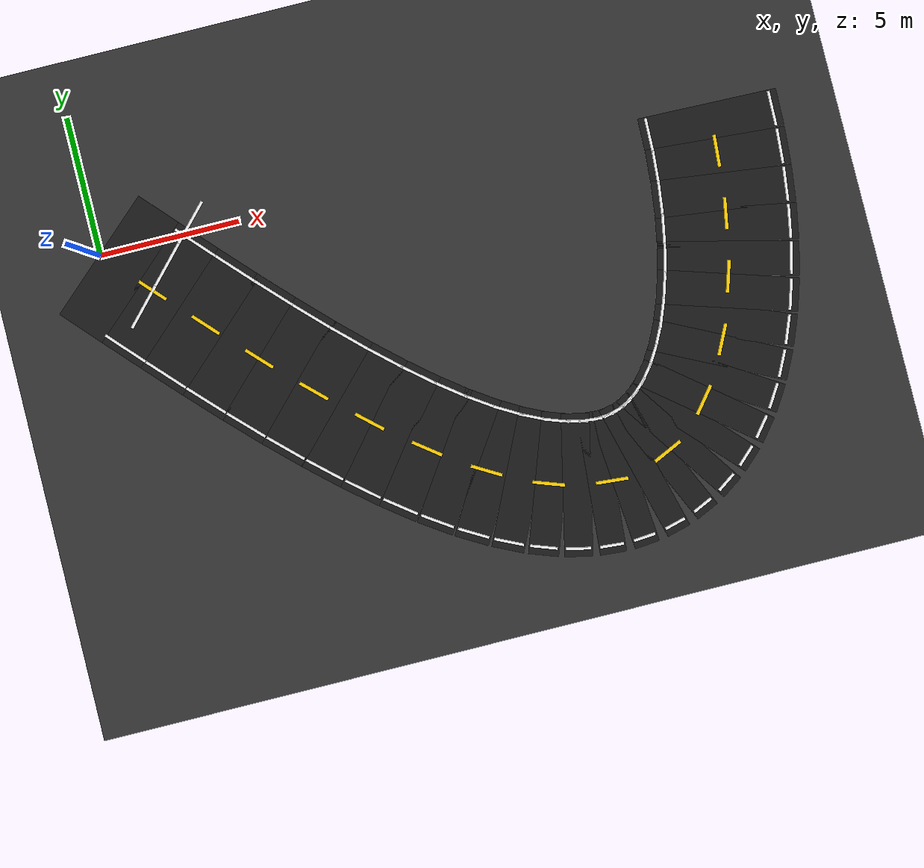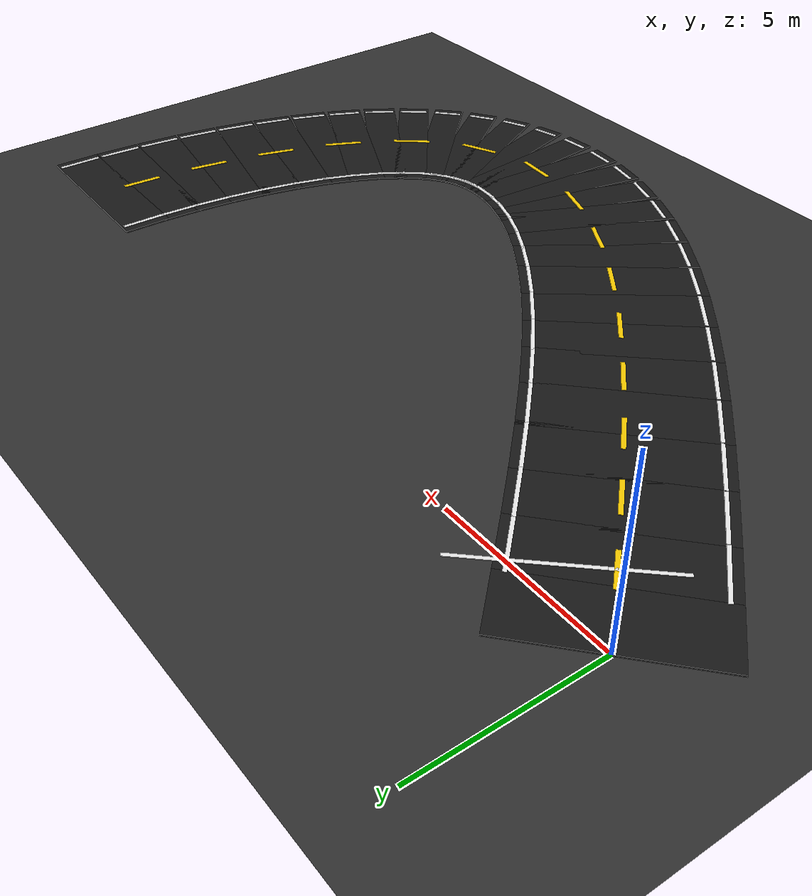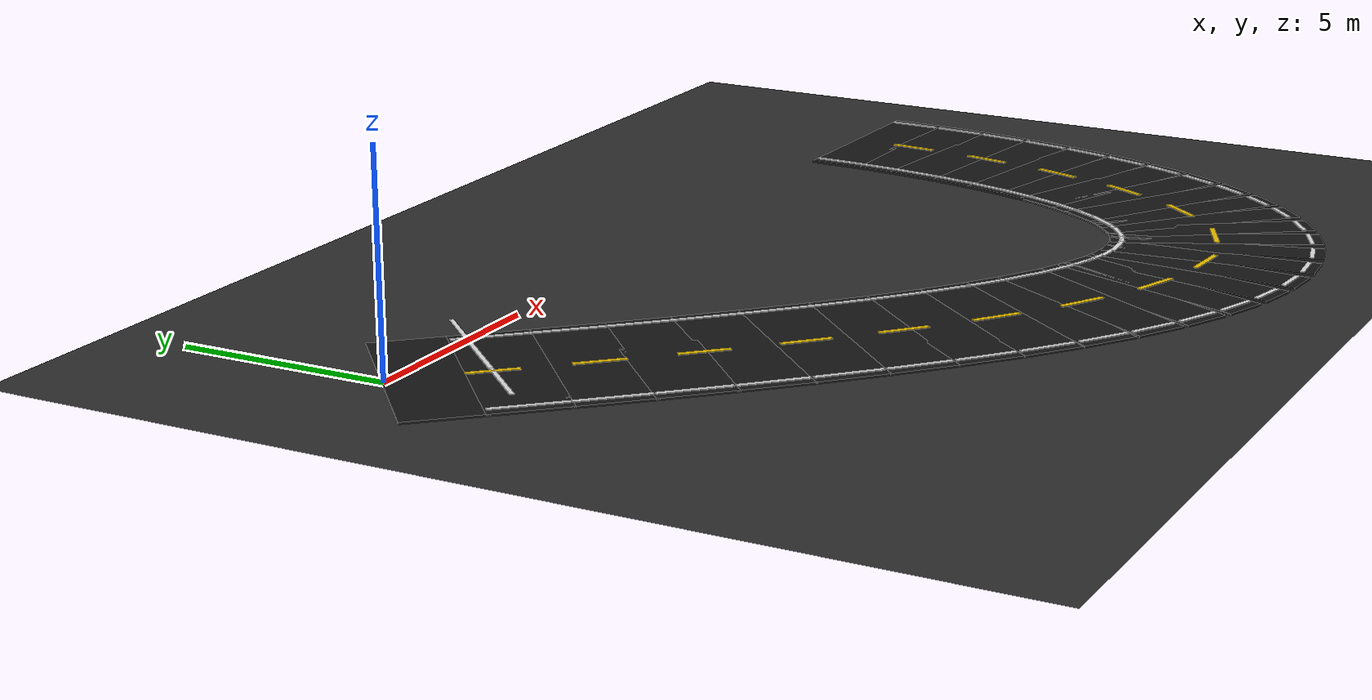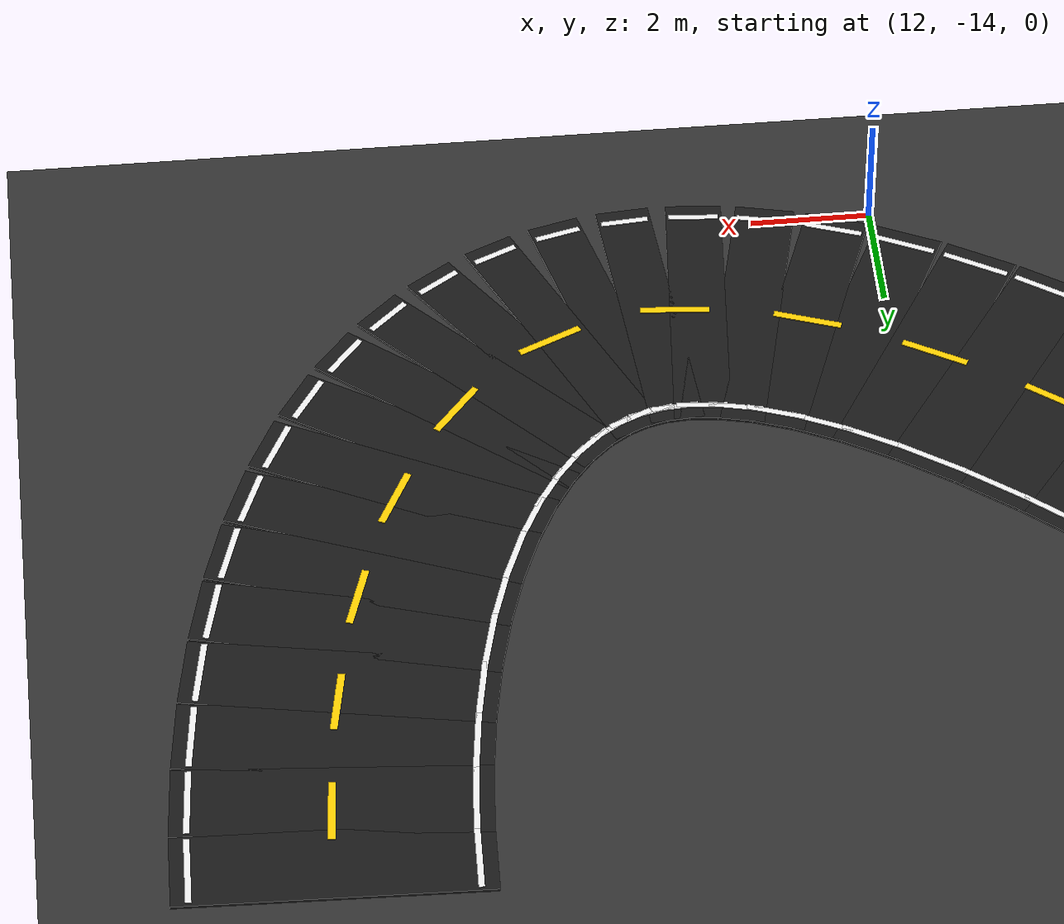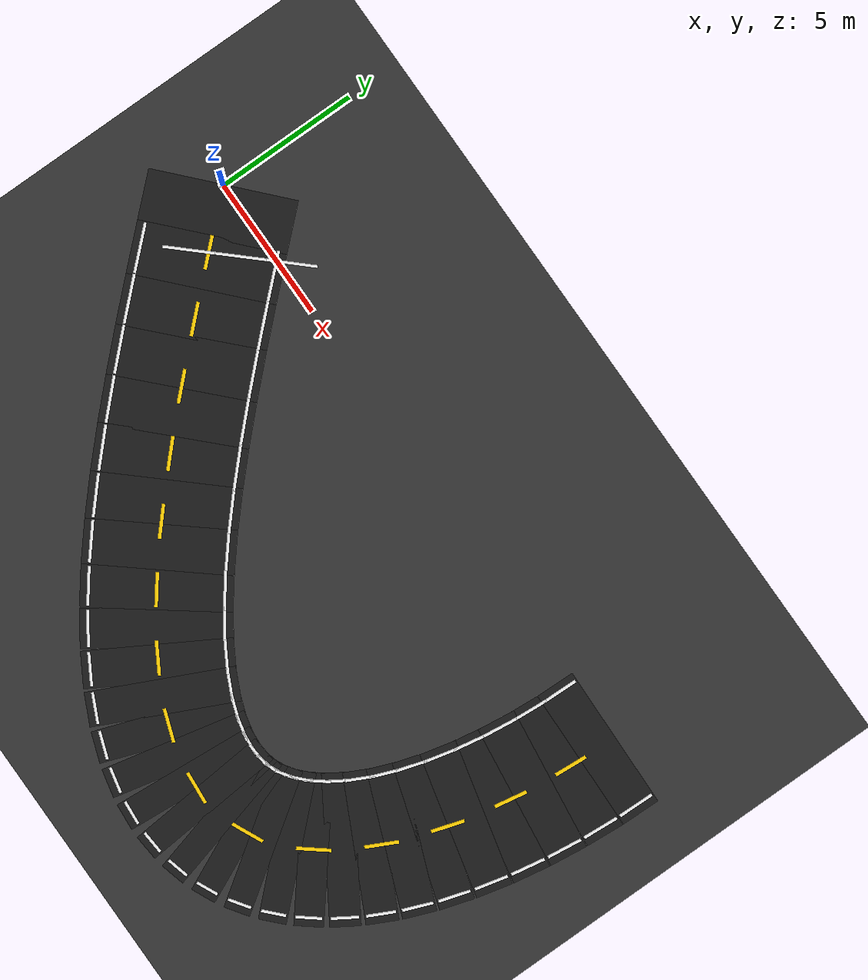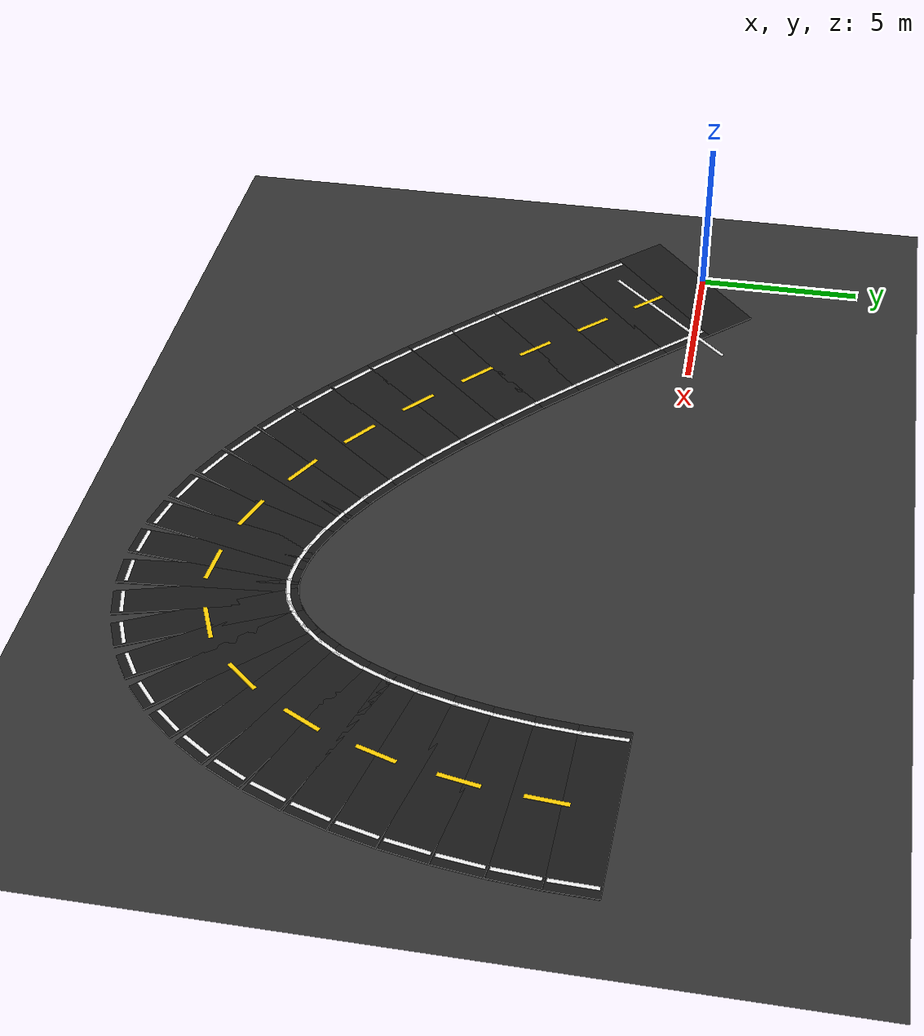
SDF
<sdf version="1.6">
 <world name="adas_figure8_circuit">
  <model name="ground">
   <static>true</static>
   <link name="link">
    <collision name="collision">
     <geometry><plane><normal>0 0 1</normal><size>80.0 80.0</size></plane></geometry>
    </collision>
    <visual name="visual">
     <geometry><plane><normal>0 0 1</normal><size>80.0 80.0</size></plane></geometry>
     <material><ambient>0.16 0.16 0.16 1</ambient><diffuse>0.20 0.20 0.20 1</diffuse></material>
    </visual>
   </link>
  </model>
  <model name="road_030">
   <static>true</static>
   <pose>21.9849 -0.6272 0.025 0 0 -1.594828</pose>
   <link name="link">
    <collision name="collision"><geometry><box><size>1.3547 5.000 0.05</size></box></geometry></collision>
    <visual name="visual">
     <geometry><box><size>1.3547 5.000 0.05</size></box></geometry>
     <material><ambient>0.07 0.07 0.07 1</ambient><diffuse>0.10 0.10 0.10 1</diffuse></material>
    </visual>
   </link>
  </model>
  <model name="road_031">
   <static>true</static>
   <pose>21.9247 -1.8746 0.025 0 0 -1.643510</pose>
   <link name="link">
    <collision name="collision"><geometry><box><size>1.3439 5.000 0.05</size></box></geometry></collision>
    <visual name="visual">
     <geometry><box><size>1.3439 5.000 0.05</size></box></geometry>
     <material><ambient>0.07 0.07 0.07 1</ambient><diffuse>0.10 0.10 0.10 1</diffuse></material>
    </visual>
   </link>
  </model>
  <model name="road_032">
   <static>true</static>
   <pose>21.8043 -3.1016 0.025 0 0 -1.694080</pose>
   <link name="link">
    <collision name="collision"><geometry><box><size>1.3225 5.000 0.05</size></box></geometry></collision>
    <visual name="visual">
     <geometry><box><size>1.3225 5.000 0.05</size></box></geometry>
     <material><ambient>0.07 0.07 0.07 1</ambient><diffuse>0.10 0.10 0.10 1</diffuse></material>
    </visual>
   </link>
  </model>
  <model name="road_033">
   <static>true</static>
   <pose>21.6242 -4.2945 0.025 0 0 -1.747916</pose>
   <link name="link">
    <collision name="collision"><geometry><box><size>1.2913 5.000 0.05</size></box></geometry></collision>
    <visual name="visual">
     <geometry><box><size>1.2913 5.000 0.05</size></box></geometry>
     <material><ambient>0.07 0.07 0.07 1</ambient><diffuse>0.10 0.10 0.10 1</diffuse></material>
    </visual>
   </link>
  </model>
  <model name="road_034">
   <static>true</static>
   <pose>21.3848 -5.4404 0.025 0 0 -1.806578</pose>
   <link name="link">
    <collision name="collision"><geometry><box><size>1.2510 5.000 0.05</size></box></geometry></collision>
    <visual name="visual">
     <geometry><box><size>1.2510 5.000 0.05</size></box></geometry>
     <material><ambient>0.07 0.07 0.07 1</ambient><diffuse>0.10 0.10 0.10 1</diffuse></material>
    </visual>
   </link>
  </model>
  <model name="road_035">
   <static>true</static>
   <pose>21.0868 -6.5267 0.025 0 0 -1.871890</pose>
   <link name="link">
    <collision name="collision"><geometry><box><size>1.2030 5.000 0.05</size></box></geometry></collision>
    <visual name="visual">
     <geometry><box><size>1.2030 5.000 0.05</size></box></geometry>
     <material><ambient>0.07 0.07 0.07 1</ambient><diffuse>0.10 0.10 0.10 1</diffuse></material>
    </visual>
   </link>
  </model>
  <model name="road_036">
   <static>true</static>
   <pose>20.7310 -7.5415 0.025 0 0 -1.946007</pose>
   <link name="link">
    <collision name="collision"><geometry><box><size>1.1491 5.000 0.05</size></box></geometry></collision>
    <visual name="visual">
     <geometry><box><size>1.1491 5.000 0.05</size></box></geometry>
     <material><ambient>0.07 0.07 0.07 1</ambient><diffuse>0.10 0.10 0.10 1</diffuse></material>
    </visual>
   </link>
  </model>
  <model name="road_037">
   <static>true</static>
   <pose>20.3184 -8.4737 0.025 0 0 -2.031453</pose>
   <link name="link">
    <collision name="collision"><geometry><box><size>1.0915 5.000 0.05</size></box></geometry></collision>
    <visual name="visual">
     <geometry><box><size>1.0915 5.000 0.05</size></box></geometry>
     <material><ambient>0.07 0.07 0.07 1</ambient><diffuse>0.10 0.10 0.10 1</diffuse></material>
    </visual>
   </link>
  </model>
  <model name="road_038">
   <static>true</static>
   <pose>19.8501 -9.3130 0.025 0 0 -2.131045</pose>
   <link name="link">
    <collision name="collision"><geometry><box><size>1.0331 5.000 0.05</size></box></geometry></collision>
    <visual name="visual">
     <geometry><box><size>1.0331 5.000 0.05</size></box></geometry>
     <material><ambient>0.07 0.07 0.07 1</ambient><diffuse>0.10 0.10 0.10 1</diffuse></material>
    </visual>
   </link>
  </model>
  <model name="road_039">
   <static>true</static>
   <pose>19.3274 -10.0503 0.025 0 0 -2.247587</pose>
   <link name="link">
    <collision name="collision"><geometry><box><size>0.9775 5.000 0.05</size></box></geometry></collision>
    <visual name="visual">
     <geometry><box><size>0.9775 5.000 0.05</size></box></geometry>
     <material><ambient>0.07 0.07 0.07 1</ambient><diffuse>0.10 0.10 0.10 1</diffuse></material>
    </visual>
   </link>
  </model>
  <model name="road_040">
   <static>true</static>
   <pose>18.7517 -10.6774 0.025 0 0 -2.383120</pose>
   <link name="link">
    <collision name="collision"><geometry><box><size>0.9291 5.000 0.05</size></box></geometry></collision>
    <visual name="visual">
     <geometry><box><size>0.9291 5.000 0.05</size></box></geometry>
     <material><ambient>0.07 0.07 0.07 1</ambient><diffuse>0.10 0.10 0.10 1</diffuse></material>
    </visual>
   </link>
  </model>
  <model name="road_041">
   <static>true</static>
   <pose>18.1246 -11.1876 0.025 0 0 -2.537619</pose>
   <link name="link">
    <collision name="collision"><geometry><box><size>0.8926 5.000 0.05</size></box></geometry></collision>
    <visual name="visual">
     <geometry><box><size>0.8926 5.000 0.05</size></box></geometry>
     <material><ambient>0.07 0.07 0.07 1</ambient><diffuse>0.10 0.10 0.10 1</diffuse></material>
    </visual>
   </link>
  </model>
  <model name="road_042">
   <static>true</static>
   <pose>17.4478 -11.5752 0.025 0 0 -2.707447</pose>
   <link name="link">
    <collision name="collision"><geometry><box><size>0.8729 5.000 0.05</size></box></geometry></collision>
    <visual name="visual">
     <geometry><box><size>0.8729 5.000 0.05</size></box></geometry>
     <material><ambient>0.07 0.07 0.07 1</ambient><diffuse>0.10 0.10 0.10 1</diffuse></material>
    </visual>
   </link>
  </model>
  <model name="road_043">
   <static>true</static>
   <pose>16.7232 -11.8360 0.025 0 0 -2.884716</pose>
   <link name="link">
    <collision name="collision"><geometry><box><size>0.8734 5.000 0.05</size></box></geometry></collision>
    <visual name="visual">
     <geometry><box><size>0.8734 5.000 0.05</size></box></geometry>
     <material><ambient>0.07 0.07 0.07 1</ambient><diffuse>0.10 0.10 0.10 1</diffuse></material>
    </visual>
   </link>
  </model>
  <model name="road_044">
   <static>true</static>
   <pose>15.9528 -11.9671 0.025 0 0 -3.058868</pose>
   <link name="link">
    <collision name="collision"><geometry><box><size>0.8956 5.000 0.05</size></box></geometry></collision>
    <visual name="visual">
     <geometry><box><size>0.8956 5.000 0.05</size></box></geometry>
     <material><ambient>0.07 0.07 0.07 1</ambient><diffuse>0.10 0.10 0.10 1</diffuse></material>
    </visual>
   </link>
  </model>
  <model name="road_045">
   <static>true</static>
   <pose>15.1386 -11.9671 0.025 0 0 3.063072</pose>
   <link name="link">
    <collision name="collision"><geometry><box><size>0.9381 5.000 0.05</size></box></geometry></collision>
    <visual name="visual">
     <geometry><box><size>0.9381 5.000 0.05</size></box></geometry>
     <material><ambient>0.07 0.07 0.07 1</ambient><diffuse>0.10 0.10 0.10 1</diffuse></material>
    </visual>
   </link>
  </model>
  <model name="road_046">
   <static>true</static>
   <pose>14.2830 -11.8360 0.025 0 0 2.920897</pose>
   <link name="link">
    <collision name="collision"><geometry><box><size>0.9976 5.000 0.05</size></box></geometry></collision>
    <visual name="visual">
     <geometry><box><size>0.9976 5.000 0.05</size></box></geometry>
     <material><ambient>0.07 0.07 0.07 1</ambient><diffuse>0.10 0.10 0.10 1</diffuse></material>
    </visual>
   </link>
  </model>
  <model name="road_047">
   <static>true</static>
   <pose>13.3882 -11.5752 0.025 0 0 2.799787</pose>
   <link name="link">
    <collision name="collision"><geometry><box><size>1.0699 5.000 0.05</size></box></geometry></collision>
    <visual name="visual">
     <geometry><box><size>1.0699 5.000 0.05</size></box></geometry>
     <material><ambient>0.07 0.07 0.07 1</ambient><diffuse>0.10 0.10 0.10 1</diffuse></material>
    </visual>
   </link>
  </model>
  <model name="road_048">
   <static>true</static>
   <pose>12.4567 -11.1876 0.025 0 0 2.698785</pose>
   <link name="link">
    <collision name="collision"><geometry><box><size>1.1505 5.000 0.05</size></box></geometry></collision>
    <visual name="visual">
     <geometry><box><size>1.1505 5.000 0.05</size></box></geometry>
     <material><ambient>0.07 0.07 0.07 1</ambient><diffuse>0.10 0.10 0.10 1</diffuse></material>
    </visual>
   </link>
  </model>
  <model name="road_049">
   <static>true</static>
   <pose>11.4910 -10.6774 0.025 0 0 2.615516</pose>
   <link name="link">
    <collision name="collision"><geometry><box><size>1.2356 5.000 0.05</size></box></geometry></collision>
    <visual name="visual">
     <geometry><box><size>1.2356 5.000 0.05</size></box></geometry>
     <material><ambient>0.07 0.07 0.07 1</ambient><diffuse>0.10 0.10 0.10 1</diffuse></material>
    </visual>
   </link>
  </model>
  <model name="road_050">
   <static>true</static>
   <pose>10.4939 -10.0503 0.025 0 0 2.547260</pose>
   <link name="link">
    <collision name="collision"><geometry><box><size>1.3217 5.000 0.05</size></box></geometry></collision>
    <visual name="visual">
     <geometry><box><size>1.3217 5.000 0.05</size></box></geometry>
     <material><ambient>0.07 0.07 0.07 1</ambient><diffuse>0.10 0.10 0.10 1</diffuse></material>
    </visual>
   </link>
  </model>
  <model name="road_051">
   <static>true</static>
   <pose>9.4680 -9.3130 0.025 0 0 2.491490</pose>
   <link name="link">
    <collision name="collision"><geometry><box><size>1.4060 5.000 0.05</size></box></geometry></collision>
    <visual name="visual">
     <geometry><box><size>1.4060 5.000 0.05</size></box></geometry>
     <material><ambient>0.07 0.07 0.07 1</ambient><diffuse>0.10 0.10 0.10 1</diffuse></material>
    </visual>
   </link>
  </model>
  <model name="road_052">
   <static>true</static>
   <pose>8.4162 -8.4737 0.025 0 0 2.446072</pose>
   <link name="link">
    <collision name="collision"><geometry><box><size>1.4861 5.000 0.05</size></box></geometry></collision>
    <visual name="visual">
     <geometry><box><size>1.4861 5.000 0.05</size></box></geometry>
     <material><ambient>0.07 0.07 0.07 1</ambient><diffuse>0.10 0.10 0.10 1</diffuse></material>
    </visual>
   </link>
  </model>
  <model name="road_053">
   <static>true</static>
   <pose>7.3412 -7.5415 0.025 0 0 2.409289</pose>
   <link name="link">
    <collision name="collision"><geometry><box><size>1.5600 5.000 0.05</size></box></geometry></collision>
    <visual name="visual">
     <geometry><box><size>1.5600 5.000 0.05</size></box></geometry>
     <material><ambient>0.07 0.07 0.07 1</ambient><diffuse>0.10 0.10 0.10 1</diffuse></material>
    </visual>
   </link>
  </model>
  <model name="road_054">
   <static>true</static>
   <pose>6.2462 -6.5267 0.025 0 0 2.379794</pose>
   <link name="link">
    <collision name="collision"><geometry><box><size>1.6262 5.000 0.05</size></box></geometry></collision>
    <visual name="visual">
     <geometry><box><size>1.6262 5.000 0.05</size></box></geometry>
     <material><ambient>0.07 0.07 0.07 1</ambient><diffuse>0.10 0.10 0.10 1</diffuse></material>
    </visual>
   </link>
  </model>
  <model name="road_055">
   <static>true</static>
   <pose>5.1340 -5.4404 0.025 0 0 2.356552</pose>
   <link name="link">
    <collision name="collision"><geometry><box><size>1.6833 5.000 0.05</size></box></geometry></collision>
    <visual name="visual">
     <geometry><box><size>1.6833 5.000 0.05</size></box></geometry>
     <material><ambient>0.07 0.07 0.07 1</ambient><diffuse>0.10 0.10 0.10 1</diffuse></material>
    </visual>
   </link>
  </model>
  <model name="road_056">
   <static>true</static>
   <pose>4.0078 -4.2945 0.025 0 0 2.338784</pose>
   <link name="link">
    <collision name="collision"><geometry><box><size>1.7302 5.000 0.05</size></box></geometry></collision>
    <visual name="visual">
     <geometry><box><size>1.7302 5.000 0.05</size></box></geometry>
     <material><ambient>0.07 0.07 0.07 1</ambient><diffuse>0.10 0.10 0.10 1</diffuse></material>
    </visual>
   </link>
  </model>
  <model name="road_057">
   <static>true</static>
   <pose>2.8706 -3.1016 0.025 0 0 2.325917</pose>
   <link name="link">
    <collision name="collision"><geometry><box><size>1.7661 5.000 0.05</size></box></geometry></collision>
    <visual name="visual">
     <geometry><box><size>1.7661 5.000 0.05</size></box></geometry>
     <material><ambient>0.07 0.07 0.07 1</ambient><diffuse>0.10 0.10 0.10 1</diffuse></material>
    </visual>
   </link>
  </model>
  <model name="road_058">
   <static>true</static>
   <pose>1.7255 -1.8746 0.025 0 0 2.317549</pose>
   <link name="link">
    <collision name="collision"><geometry><box><size>1.7904 5.000 0.05</size></box></geometry></collision>
    <visual name="visual">
     <geometry><box><size>1.7904 5.000 0.05</size></box></geometry>
     <material><ambient>0.07 0.07 0.07 1</ambient><diffuse>0.10 0.10 0.10 1</diffuse></material>
    </visual>
   </link>
  </model>
  <model name="road_059">
   <static>true</static>
   <pose>0.5757 -0.6272 0.025 0 0 2.313427</pose>
   <link name="link">
    <collision name="collision"><geometry><box><size>1.8027 5.000 0.05</size></box></geometry></collision>
    <visual name="visual">
     <geometry><box><size>1.8027 5.000 0.05</size></box></geometry>
     <material><ambient>0.07 0.07 0.07 1</ambient><diffuse>0.10 0.10 0.10 1</diffuse></material>
    </visual>
   </link>
  </model>
  <model name="center_dash_016">
   <static>true</static>
   <pose>21.9398 -1.6674 0.058 0 0 -1.643510</pose>
   <link name="link">
    <visual name="visual">
     <geometry><box><size>1.150 0.12 0.02</size></box></geometry>
     <material><ambient>1 0.82 0 1</ambient><diffuse>1 0.82 0 1</diffuse></material>
    </visual>
   </link>
  </model>
  <model name="center_dash_017">
   <static>true</static>
   <pose>21.6987 -3.8783 0.058 0 0 -1.747916</pose>
   <link name="link">
    <visual name="visual">
     <geometry><box><size>1.150 0.12 0.02</size></box></geometry>
     <material><ambient>1 0.82 0 1</ambient><diffuse>1 0.82 0 1</diffuse></material>
    </visual>
   </link>
  </model>
  <model name="center_dash_018">
   <static>true</static>
   <pose>21.2339 -6.0532 0.058 0 0 -1.871890</pose>
   <link name="link">
    <visual name="visual">
     <geometry><box><size>1.150 0.12 0.02</size></box></geometry>
     <material><ambient>1 0.82 0 1</ambient><diffuse>1 0.82 0 1</diffuse></material>
    </visual>
   </link>
  </model>
  <model name="center_dash_019">
   <static>true</static>
   <pose>20.4816 -8.1448 0.058 0 0 -2.031453</pose>
   <link name="link">
    <visual name="visual">
     <geometry><box><size>1.150 0.12 0.02</size></box></geometry>
     <material><ambient>1 0.82 0 1</ambient><diffuse>1 0.82 0 1</diffuse></material>
    </visual>
   </link>
  </model>
  <model name="center_dash_020">
   <static>true</static>
   <pose>19.3334 -10.0427 0.058 0 0 -2.247587</pose>
   <link name="link">
    <visual name="visual">
     <geometry><box><size>1.150 0.12 0.02</size></box></geometry>
     <material><ambient>1 0.82 0 1</ambient><diffuse>1 0.82 0 1</diffuse></material>
    </visual>
   </link>
  </model>
  <model name="center_dash_021">
   <static>true</static>
   <pose>17.6577 -11.4779 0.058 0 0 -2.707447</pose>
   <link name="link">
    <visual name="visual">
     <geometry><box><size>1.150 0.12 0.02</size></box></geometry>
     <material><ambient>1 0.82 0 1</ambient><diffuse>1 0.82 0 1</diffuse></material>
    </visual>
   </link>
  </model>
  <model name="center_dash_022">
   <static>true</static>
   <pose>15.5181 -11.9970 0.058 0 0 3.063072</pose>
   <link name="link">
    <visual name="visual">
     <geometry><box><size>1.150 0.12 0.02</size></box></geometry>
     <material><ambient>1 0.82 0 1</ambient><diffuse>1 0.82 0 1</diffuse></material>
    </visual>
   </link>
  </model>
  <model name="center_dash_023">
   <static>true</static>
   <pose>13.3478 -11.5609 0.058 0 0 2.799787</pose>
   <link name="link">
    <visual name="visual">
     <geometry><box><size>1.150 0.12 0.02</size></box></geometry>
     <material><ambient>1 0.82 0 1</ambient><diffuse>1 0.82 0 1</diffuse></material>
    </visual>
   </link>
  </model>
  <model name="center_dash_024">
   <static>true</static>
   <pose>11.3486 -10.5947 0.058 0 0 2.615516</pose>
   <link name="link">
    <visual name="visual">
     <geometry><box><size>1.150 0.12 0.02</size></box></geometry>
     <material><ambient>1 0.82 0 1</ambient><diffuse>1 0.82 0 1</diffuse></material>
    </visual>
   </link>
  </model>
  <model name="center_dash_025">
   <static>true</static>
   <pose>9.5099 -9.3449 0.058 0 0 2.491490</pose>
   <link name="link">
    <visual name="visual">
     <geometry><box><size>1.150 0.12 0.02</size></box></geometry>
     <material><ambient>1 0.82 0 1</ambient><diffuse>1 0.82 0 1</diffuse></material>
    </visual>
   </link>
  </model>
  <model name="center_dash_026">
   <static>true</static>
   <pose>7.7849 -7.9404 0.058 0 0 2.409289</pose>
   <link name="link">
    <visual name="visual">
     <geometry><box><size>1.150 0.12 0.02</size></box></geometry>
     <material><ambient>1 0.82 0 1</ambient><diffuse>1 0.82 0 1</diffuse></material>
    </visual>
   </link>
  </model>
  <model name="center_dash_027">
   <static>true</static>
   <pose>6.1482 -6.4333 0.058 0 0 2.379794</pose>
   <link name="link">
    <visual name="visual">
     <geometry><box><size>1.150 0.12 0.02</size></box></geometry>
     <material><ambient>1 0.82 0 1</ambient><diffuse>1 0.82 0 1</diffuse></material>
    </visual>
   </link>
  </model>
  <model name="center_dash_028">
   <static>true</static>
   <pose>4.5643 -4.8707 0.058 0 0 2.338784</pose>
   <link name="link">
    <visual name="visual">
     <geometry><box><size>1.150 0.12 0.02</size></box></geometry>
     <material><ambient>1 0.82 0 1</ambient><diffuse>1 0.82 0 1</diffuse></material>
    </visual>
   </link>
  </model>
  <model name="center_dash_029">
   <static>true</static>
   <pose>3.0242 -3.2647 0.058 0 0 2.325917</pose>
   <link name="link">
    <visual name="visual">
     <geometry><box><size>1.150 0.12 0.02</size></box></geometry>
     <material><ambient>1 0.82 0 1</ambient><diffuse>1 0.82 0 1</diffuse></material>
    </visual>
   </link>
  </model>
  <model name="center_dash_030">
   <static>true</static>
   <pose>1.5063 -1.6378 0.058 0 0 2.317549</pose>
   <link name="link">
    <visual name="visual">
     <geometry><box><size>1.150 0.12 0.02</size></box></geometry>
     <material><ambient>1 0.82 0 1</ambient><diffuse>1 0.82 0 1</diffuse></material>
    </visual>
   </link>
  </model>
  <model name="edge_left_030">
   <static>true</static>
   <pose>24.2043 -0.6805 0.058 0 0 -1.594828</pose>
   <link name="link">
    <visual name="visual">
     <geometry><box><size>1.2547 0.10 0.02</size></box></geometry>
     <material><ambient>0.95 0.95 0.95 1</ambient><diffuse>0.95 0.95 0.95 1</diffuse></material>
    </visual>
   </link>
  </model>
  <model name="edge_left_031">
   <static>true</static>
   <pose>24.1388 -2.0359 0.058 0 0 -1.643510</pose>
   <link name="link">
    <visual name="visual">
     <geometry><box><size>1.2439 0.10 0.02</size></box></geometry>
     <material><ambient>0.95 0.95 0.95 1</ambient><diffuse>0.95 0.95 0.95 1</diffuse></material>
    </visual>
   </link>
  </model>
  <model name="edge_left_032">
   <static>true</static>
   <pose>24.0075 -3.3746 0.058 0 0 -1.694080</pose>
   <link name="link">
    <visual name="visual">
     <geometry><box><size>1.2225 0.10 0.02</size></box></geometry>
     <material><ambient>0.95 0.95 0.95 1</ambient><diffuse>0.95 0.95 0.95 1</diffuse></material>
    </visual>
   </link>
  </model>
  <model name="edge_left_033">
   <static>true</static>
   <pose>23.8095 -4.6857 0.058 0 0 -1.747916</pose>
   <link name="link">
    <visual name="visual">
     <geometry><box><size>1.1913 0.10 0.02</size></box></geometry>
     <material><ambient>0.95 0.95 0.95 1</ambient><diffuse>0.95 0.95 0.95 1</diffuse></material>
    </visual>
   </link>
  </model>
  <model name="edge_left_034">
   <static>true</static>
   <pose>23.5434 -5.9590 0.058 0 0 -1.806578</pose>
   <link name="link">
    <visual name="visual">
     <geometry><box><size>1.1510 0.10 0.02</size></box></geometry>
     <material><ambient>0.95 0.95 0.95 1</ambient><diffuse>0.95 0.95 0.95 1</diffuse></material>
    </visual>
   </link>
  </model>
  <model name="edge_left_035">
   <static>true</static>
   <pose>23.2069 -7.1851 0.058 0 0 -1.871890</pose>
   <link name="link">
    <visual name="visual">
     <geometry><box><size>1.1030 0.10 0.02</size></box></geometry>
     <material><ambient>0.95 0.95 0.95 1</ambient><diffuse>0.95 0.95 0.95 1</diffuse></material>
    </visual>
   </link>
  </model>
  <model name="edge_left_036">
   <static>true</static>
   <pose>22.7966 -8.3551 0.058 0 0 -1.946007</pose>
   <link name="link">
    <visual name="visual">
     <geometry><box><size>1.0491 0.10 0.02</size></box></geometry>
     <material><ambient>0.95 0.95 0.95 1</ambient><diffuse>0.95 0.95 0.95 1</diffuse></material>
    </visual>
   </link>
  </model>
  <model name="edge_left_037">
   <static>true</static>
   <pose>22.3070 -9.4605 0.058 0 0 -2.031453</pose>
   <link name="link">
    <visual name="visual">
     <geometry><box><size>0.9915 0.10 0.02</size></box></geometry>
     <material><ambient>0.95 0.95 0.95 1</ambient><diffuse>0.95 0.95 0.95 1</diffuse></material>
    </visual>
   </link>
  </model>
  <model name="edge_left_038">
   <static>true</static>
   <pose>21.7307 -10.4927 0.058 0 0 -2.131045</pose>
   <link name="link">
    <visual name="visual">
     <geometry><box><size>0.9331 0.10 0.02</size></box></geometry>
     <material><ambient>0.95 0.95 0.95 1</ambient><diffuse>0.95 0.95 0.95 1</diffuse></material>
    </visual>
   </link>
  </model>
  <model name="edge_left_039">
   <static>true</static>
   <pose>21.0580 -11.4406 0.058 0 0 -2.247587</pose>
   <link name="link">
    <visual name="visual">
     <geometry><box><size>0.8775 0.10 0.02</size></box></geometry>
     <material><ambient>0.95 0.95 0.95 1</ambient><diffuse>0.95 0.95 0.95 1</diffuse></material>
    </visual>
   </link>
  </model>
  <model name="edge_left_040">
   <static>true</static>
   <pose>20.2786 -12.2889 0.058 0 0 -2.383120</pose>
   <link name="link">
    <visual name="visual">
     <geometry><box><size>0.8291 0.10 0.02</size></box></geometry>
     <material><ambient>0.95 0.95 0.95 1</ambient><diffuse>0.95 0.95 0.95 1</diffuse></material>
    </visual>
   </link>
  </model>
  <model name="edge_left_041">
   <static>true</static>
   <pose>19.3853 -13.0149 0.058 0 0 -2.537619</pose>
   <link name="link">
    <visual name="visual">
     <geometry><box><size>0.7926 0.10 0.02</size></box></geometry>
     <material><ambient>0.95 0.95 0.95 1</ambient><diffuse>0.95 0.95 0.95 1</diffuse></material>
    </visual>
   </link>
  </model>
  <model name="edge_left_042">
   <static>true</static>
   <pose>18.3816 -13.5893 0.058 0 0 -2.707447</pose>
   <link name="link">
    <visual name="visual">
     <geometry><box><size>0.7729 0.10 0.02</size></box></geometry>
     <material><ambient>0.95 0.95 0.95 1</ambient><diffuse>0.95 0.95 0.95 1</diffuse></material>
    </visual>
   </link>
  </model>
  <model name="edge_left_043">
   <static>true</static>
   <pose>17.2872 -13.9832 0.058 0 0 -2.884716</pose>
   <link name="link">
    <visual name="visual">
     <geometry><box><size>0.7734 0.10 0.02</size></box></geometry>
     <material><ambient>0.95 0.95 0.95 1</ambient><diffuse>0.95 0.95 0.95 1</diffuse></material>
    </visual>
   </link>
  </model>
  <model name="edge_left_044">
   <static>true</static>
   <pose>16.1362 -14.1795 0.058 0 0 -3.058868</pose>
   <link name="link">
    <visual name="visual">
     <geometry><box><size>0.7956 0.10 0.02</size></box></geometry>
     <material><ambient>0.95 0.95 0.95 1</ambient><diffuse>0.95 0.95 0.95 1</diffuse></material>
    </visual>
   </link>
  </model>
  <model name="edge_left_045">
   <static>true</static>
   <pose>14.9645 -14.1803 0.058 0 0 3.063072</pose>
   <link name="link">
    <visual name="visual">
     <geometry><box><size>0.8381 0.10 0.02</size></box></geometry>
     <material><ambient>0.95 0.95 0.95 1</ambient><diffuse>0.95 0.95 0.95 1</diffuse></material>
    </visual>
   </link>
  </model>
  <model name="edge_left_046">
   <static>true</static>
   <pose>13.7970 -14.0022 0.058 0 0 2.920897</pose>
   <link name="link">
    <visual name="visual">
     <geometry><box><size>0.8976 0.10 0.02</size></box></geometry>
     <material><ambient>0.95 0.95 0.95 1</ambient><diffuse>0.95 0.95 0.95 1</diffuse></material>
    </visual>
   </link>
  </model>
  <model name="edge_left_047">
   <static>true</static>
   <pose>12.6440 -13.6668 0.058 0 0 2.799787</pose>
   <link name="link">
    <visual name="visual">
     <geometry><box><size>0.9699 0.10 0.02</size></box></geometry>
     <material><ambient>0.95 0.95 0.95 1</ambient><diffuse>0.95 0.95 0.95 1</diffuse></material>
    </visual>
   </link>
  </model>
  <model name="edge_left_048">
   <static>true</static>
   <pose>11.5054 -13.1935 0.058 0 0 2.698785</pose>
   <link name="link">
    <visual name="visual">
     <geometry><box><size>1.0505 0.10 0.02</size></box></geometry>
     <material><ambient>0.95 0.95 0.95 1</ambient><diffuse>0.95 0.95 0.95 1</diffuse></material>
    </visual>
   </link>
  </model>
  <model name="edge_left_049">
   <static>true</static>
   <pose>10.3763 -12.5972 0.058 0 0 2.615516</pose>
   <link name="link">
    <visual name="visual">
     <geometry><box><size>1.1356 0.10 0.02</size></box></geometry>
     <material><ambient>0.95 0.95 0.95 1</ambient><diffuse>0.95 0.95 0.95 1</diffuse></material>
    </visual>
   </link>
  </model>
  <model name="edge_left_050">
   <static>true</static>
   <pose>9.2508 -11.8896 0.058 0 0 2.547260</pose>
   <link name="link">
    <visual name="visual">
     <geometry><box><size>1.2217 0.10 0.02</size></box></geometry>
     <material><ambient>0.95 0.95 0.95 1</ambient><diffuse>0.95 0.95 0.95 1</diffuse></material>
    </visual>
   </link>
  </model>
  <model name="edge_left_051">
   <static>true</static>
   <pose>8.1243 -11.0801 0.058 0 0 2.491490</pose>
   <link name="link">
    <visual name="visual">
     <geometry><box><size>1.3060 0.10 0.02</size></box></geometry>
     <material><ambient>0.95 0.95 0.95 1</ambient><diffuse>0.95 0.95 0.95 1</diffuse></material>
    </visual>
   </link>
  </model>
  <model name="edge_left_052">
   <static>true</static>
   <pose>6.9936 -10.1780 0.058 0 0 2.446072</pose>
   <link name="link">
    <visual name="visual">
     <geometry><box><size>1.3861 0.10 0.02</size></box></geometry>
     <material><ambient>0.95 0.95 0.95 1</ambient><diffuse>0.95 0.95 0.95 1</diffuse></material>
    </visual>
   </link>
  </model>
  <model name="edge_left_053">
   <static>true</static>
   <pose>5.8570 -9.1924 0.058 0 0 2.409289</pose>
   <link name="link">
    <visual name="visual">
     <geometry><box><size>1.4600 0.10 0.02</size></box></geometry>
     <material><ambient>0.95 0.95 0.95 1</ambient><diffuse>0.95 0.95 0.95 1</diffuse></material>
    </visual>
   </link>
  </model>
  <model name="edge_left_054">
   <static>true</static>
   <pose>4.7139 -8.1331 0.058 0 0 2.379794</pose>
   <link name="link">
    <visual name="visual">
     <geometry><box><size>1.5262 0.10 0.02</size></box></geometry>
     <material><ambient>0.95 0.95 0.95 1</ambient><diffuse>0.95 0.95 0.95 1</diffuse></material>
    </visual>
   </link>
  </model>
  <model name="edge_left_055">
   <static>true</static>
   <pose>3.5648 -7.0108 0.058 0 0 2.356552</pose>
   <link name="link">
    <visual name="visual">
     <geometry><box><size>1.5833 0.10 0.02</size></box></geometry>
     <material><ambient>0.95 0.95 0.95 1</ambient><diffuse>0.95 0.95 0.95 1</diffuse></material>
    </visual>
   </link>
  </model>
  <model name="edge_left_056">
   <static>true</static>
   <pose>2.4109 -5.8367 0.058 0 0 2.338784</pose>
   <link name="link">
    <visual name="visual">
     <geometry><box><size>1.6302 0.10 0.02</size></box></geometry>
     <material><ambient>0.95 0.95 0.95 1</ambient><diffuse>0.95 0.95 0.95 1</diffuse></material>
    </visual>
   </link>
  </model>
  <model name="edge_left_057">
   <static>true</static>
   <pose>1.2540 -4.6231 0.058 0 0 2.325917</pose>
   <link name="link">
    <visual name="visual">
     <geometry><box><size>1.6661 0.10 0.02</size></box></geometry>
     <material><ambient>0.95 0.95 0.95 1</ambient><diffuse>0.95 0.95 0.95 1</diffuse></material>
    </visual>
   </link>
  </model>
  <model name="edge_left_058">
   <static>true</static>
   <pose>0.0963 -3.3826 0.058 0 0 2.317549</pose>
   <link name="link">
    <visual name="visual">
     <geometry><box><size>1.6904 0.10 0.02</size></box></geometry>
     <material><ambient>0.95 0.95 0.95 1</ambient><diffuse>0.95 0.95 0.95 1</diffuse></material>
    </visual>
   </link>
  </model>
  <model name="edge_right_000">
   <static>true</static>
   <pose>2.2112 -0.8741 0.058 0 0 0.828166</pose>
   <link name="link">
    <visual name="visual">
     <geometry><box><size>1.7027 0.10 0.02</size></box></geometry>
     <material><ambient>0.95 0.95 0.95 1</ambient><diffuse>0.95 0.95 0.95 1</diffuse></material>
    </visual>
   </link>
  </model>
  <model name="edge_right_001">
   <static>true</static>
   <pose>3.3548 0.3667 0.058 0 0 0.824044</pose>
   <link name="link">
    <visual name="visual">
     <geometry><box><size>1.6904 0.10 0.02</size></box></geometry>
     <material><ambient>0.95 0.95 0.95 1</ambient><diffuse>0.95 0.95 0.95 1</diffuse></material>
    </visual>
   </link>
  </model>
  <model name="edge_right_030">
   <static>true</static>
   <pose>19.7656 -0.5738 0.058 0 0 -1.594828</pose>
   <link name="link">
    <visual name="visual">
     <geometry><box><size>1.2547 0.10 0.02</size></box></geometry>
     <material><ambient>0.95 0.95 0.95 1</ambient><diffuse>0.95 0.95 0.95 1</diffuse></material>
    </visual>
   </link>
  </model>
  <model name="edge_right_031">
   <static>true</static>
   <pose>19.7105 -1.7134 0.058 0 0 -1.643510</pose>
   <link name="link">
    <visual name="visual">
     <geometry><box><size>1.2439 0.10 0.02</size></box></geometry>
     <material><ambient>0.95 0.95 0.95 1</ambient><diffuse>0.95 0.95 0.95 1</diffuse></material>
    </visual>
   </link>
  </model>
  <model name="edge_right_032">
   <static>true</static>
   <pose>19.6012 -2.8286 0.058 0 0 -1.694080</pose>
   <link name="link">
    <visual name="visual">
     <geometry><box><size>1.2225 0.10 0.02</size></box></geometry>
     <material><ambient>0.95 0.95 0.95 1</ambient><diffuse>0.95 0.95 0.95 1</diffuse></material>
    </visual>
   </link>
  </model>
  <model name="edge_right_033">
   <static>true</static>
   <pose>19.4389 -3.9034 0.058 0 0 -1.747916</pose>
   <link name="link">
    <visual name="visual">
     <geometry><box><size>1.1913 0.10 0.02</size></box></geometry>
     <material><ambient>0.95 0.95 0.95 1</ambient><diffuse>0.95 0.95 0.95 1</diffuse></material>
    </visual>
   </link>
  </model>
  <model name="edge_right_034">
   <static>true</static>
   <pose>19.2262 -4.9218 0.058 0 0 -1.806578</pose>
   <link name="link">
    <visual name="visual">
     <geometry><box><size>1.1510 0.10 0.02</size></box></geometry>
     <material><ambient>0.95 0.95 0.95 1</ambient><diffuse>0.95 0.95 0.95 1</diffuse></material>
    </visual>
   </link>
  </model>
  <model name="edge_right_035">
   <static>true</static>
   <pose>18.9667 -5.8683 0.058 0 0 -1.871890</pose>
   <link name="link">
    <visual name="visual">
     <geometry><box><size>1.1030 0.10 0.02</size></box></geometry>
     <material><ambient>0.95 0.95 0.95 1</ambient><diffuse>0.95 0.95 0.95 1</diffuse></material>
    </visual>
   </link>
  </model>
  <model name="edge_right_036">
   <static>true</static>
   <pose>18.6655 -6.7279 0.058 0 0 -1.946007</pose>
   <link name="link">
    <visual name="visual">
     <geometry><box><size>1.0491 0.10 0.02</size></box></geometry>
     <material><ambient>0.95 0.95 0.95 1</ambient><diffuse>0.95 0.95 0.95 1</diffuse></material>
    </visual>
   </link>
  </model>
  <model name="edge_right_037">
   <static>true</static>
   <pose>18.3298 -7.4868 0.058 0 0 -2.031453</pose>
   <link name="link">
    <visual name="visual">
     <geometry><box><size>0.9915 0.10 0.02</size></box></geometry>
     <material><ambient>0.95 0.95 0.95 1</ambient><diffuse>0.95 0.95 0.95 1</diffuse></material>
    </visual>
   </link>
  </model>
  <model name="edge_right_038">
   <static>true</static>
   <pose>17.9695 -8.1333 0.058 0 0 -2.131045</pose>
   <link name="link">
    <visual name="visual">
     <geometry><box><size>0.9331 0.10 0.02</size></box></geometry>
     <material><ambient>0.95 0.95 0.95 1</ambient><diffuse>0.95 0.95 0.95 1</diffuse></material>
    </visual>
   </link>
  </model>
  <model name="edge_right_039">
   <static>true</static>
   <pose>17.5967 -8.6599 0.058 0 0 -2.247587</pose>
   <link name="link">
    <visual name="visual">
     <geometry><box><size>0.8775 0.10 0.02</size></box></geometry>
     <material><ambient>0.95 0.95 0.95 1</ambient><diffuse>0.95 0.95 0.95 1</diffuse></material>
    </visual>
   </link>
  </model>
  <model name="edge_right_040">
   <static>true</static>
   <pose>17.2247 -9.0660 0.058 0 0 -2.383120</pose>
   <link name="link">
    <visual name="visual">
     <geometry><box><size>0.8291 0.10 0.02</size></box></geometry>
     <material><ambient>0.95 0.95 0.95 1</ambient><diffuse>0.95 0.95 0.95 1</diffuse></material>
    </visual>
   </link>
  </model>
  <model name="edge_right_041">
   <static>true</static>
   <pose>16.8638 -9.3604 0.058 0 0 -2.537619</pose>
   <link name="link">
    <visual name="visual">
     <geometry><box><size>0.7926 0.10 0.02</size></box></geometry>
     <material><ambient>0.95 0.95 0.95 1</ambient><diffuse>0.95 0.95 0.95 1</diffuse></material>
    </visual>
   </link>
  </model>
  <model name="edge_right_042">
   <static>true</static>
   <pose>16.5140 -9.5612 0.058 0 0 -2.707447</pose>
   <link name="link">
    <visual name="visual">
     <geometry><box><size>0.7729 0.10 0.02</size></box></geometry>
     <material><ambient>0.95 0.95 0.95 1</ambient><diffuse>0.95 0.95 0.95 1</diffuse></material>
    </visual>
   </link>
  </model>
  <model name="edge_right_043">
   <static>true</static>
   <pose>16.1592 -9.6889 0.058 0 0 -2.884716</pose>
   <link name="link">
    <visual name="visual">
     <geometry><box><size>0.7734 0.10 0.02</size></box></geometry>
     <material><ambient>0.95 0.95 0.95 1</ambient><diffuse>0.95 0.95 0.95 1</diffuse></material>
    </visual>
   </link>
  </model>
  <model name="edge_right_044">
   <static>true</static>
   <pose>15.7693 -9.7547 0.058 0 0 -3.058868</pose>
   <link name="link">
    <visual name="visual">
     <geometry><box><size>0.7956 0.10 0.02</size></box></geometry>
     <material><ambient>0.95 0.95 0.95 1</ambient><diffuse>0.95 0.95 0.95 1</diffuse></material>
    </visual>
   </link>
  </model>
  <model name="edge_right_045">
   <static>true</static>
   <pose>15.3127 -9.7540 0.058 0 0 3.063072</pose>
   <link name="link">
    <visual name="visual">
     <geometry><box><size>0.8381 0.10 0.02</size></box></geometry>
     <material><ambient>0.95 0.95 0.95 1</ambient><diffuse>0.95 0.95 0.95 1</diffuse></material>
    </visual>
   </link>
  </model>
  <model name="edge_right_046">
   <static>true</static>
   <pose>14.7689 -9.6699 0.058 0 0 2.920897</pose>
   <link name="link">
    <visual name="visual">
     <geometry><box><size>0.8976 0.10 0.02</size></box></geometry>
     <material><ambient>0.95 0.95 0.95 1</ambient><diffuse>0.95 0.95 0.95 1</diffuse></material>
    </visual>
   </link>
  </model>
  <model name="edge_right_047">
   <static>true</static>
   <pose>14.1323 -9.4836 0.058 0 0 2.799787</pose>
   <link name="link">
    <visual name="visual">
     <geometry><box><size>0.9699 0.10 0.02</size></box></geometry>
     <material><ambient>0.95 0.95 0.95 1</ambient><diffuse>0.95 0.95 0.95 1</diffuse></material>
    </visual>
   </link>
  </model>
  <model name="edge_right_048">
   <static>true</static>
   <pose>13.4079 -9.1817 0.058 0 0 2.698785</pose>
   <link name="link">
    <visual name="visual">
     <geometry><box><size>1.0505 0.10 0.02</size></box></geometry>
     <material><ambient>0.95 0.95 0.95 1</ambient><diffuse>0.95 0.95 0.95 1</diffuse></material>
    </visual>
   </link>
  </model>
  <model name="edge_right_049">
   <static>true</static>
   <pose>12.6058 -8.7576 0.058 0 0 2.615516</pose>
   <link name="link">
    <visual name="visual">
     <geometry><box><size>1.1356 0.10 0.02</size></box></geometry>
     <material><ambient>0.95 0.95 0.95 1</ambient><diffuse>0.95 0.95 0.95 1</diffuse></material>
    </visual>
   </link>
  </model>
  <model name="edge_right_050">
   <static>true</static>
   <pose>11.7370 -8.2109 0.058 0 0 2.547260</pose>
   <link name="link">
    <visual name="visual">
     <geometry><box><size>1.2217 0.10 0.02</size></box></geometry>
     <material><ambient>0.95 0.95 0.95 1</ambient><diffuse>0.95 0.95 0.95 1</diffuse></material>
    </visual>
   </link>
  </model>
  <model name="edge_right_051">
   <static>true</static>
   <pose>10.8117 -7.5458 0.058 0 0 2.491490</pose>
   <link name="link">
    <visual name="visual">
     <geometry><box><size>1.3060 0.10 0.02</size></box></geometry>
     <material><ambient>0.95 0.95 0.95 1</ambient><diffuse>0.95 0.95 0.95 1</diffuse></material>
    </visual>
   </link>
  </model>
  <model name="edge_right_052">
   <static>true</static>
   <pose>9.8387 -6.7693 0.058 0 0 2.446072</pose>
   <link name="link">
    <visual name="visual">
     <geometry><box><size>1.3861 0.10 0.02</size></box></geometry>
     <material><ambient>0.95 0.95 0.95 1</ambient><diffuse>0.95 0.95 0.95 1</diffuse></material>
    </visual>
   </link>
  </model>
  <model name="edge_right_053">
   <static>true</static>
   <pose>8.8255 -5.8906 0.058 0 0 2.409289</pose>
   <link name="link">
    <visual name="visual">
     <geometry><box><size>1.4600 0.10 0.02</size></box></geometry>
     <material><ambient>0.95 0.95 0.95 1</ambient><diffuse>0.95 0.95 0.95 1</diffuse></material>
    </visual>
   </link>
  </model>
  <model name="edge_right_054">
   <static>true</static>
   <pose>7.7785 -4.9203 0.058 0 0 2.379794</pose>
   <link name="link">
    <visual name="visual">
     <geometry><box><size>1.5262 0.10 0.02</size></box></geometry>
     <material><ambient>0.95 0.95 0.95 1</ambient><diffuse>0.95 0.95 0.95 1</diffuse></material>
    </visual>
   </link>
  </model>
  <model name="edge_right_055">
   <static>true</static>
   <pose>6.7033 -3.8701 0.058 0 0 2.356552</pose>
   <link name="link">
    <visual name="visual">
     <geometry><box><size>1.5833 0.10 0.02</size></box></geometry>
     <material><ambient>0.95 0.95 0.95 1</ambient><diffuse>0.95 0.95 0.95 1</diffuse></material>
    </visual>
   </link>
  </model>
  <model name="edge_right_056">
   <static>true</static>
   <pose>5.6047 -2.7523 0.058 0 0 2.338784</pose>
   <link name="link">
    <visual name="visual">
     <geometry><box><size>1.6302 0.10 0.02</size></box></geometry>
     <material><ambient>0.95 0.95 0.95 1</ambient><diffuse>0.95 0.95 0.95 1</diffuse></material>
    </visual>
   </link>
  </model>
  <model name="edge_right_057">
   <static>true</static>
   <pose>4.4872 -1.5800 0.058 0 0 2.325917</pose>
   <link name="link">
    <visual name="visual">
     <geometry><box><size>1.6661 0.10 0.02</size></box></geometry>
     <material><ambient>0.95 0.95 0.95 1</ambient><diffuse>0.95 0.95 0.95 1</diffuse></material>
    </visual>
   </link>
  </model>
  <model name="edge_right_058">
   <static>true</static>
   <pose>3.3548 -0.3667 0.058 0 0 2.317549</pose>
   <link name="link">
    <visual name="visual">
     <geometry><box><size>1.6904 0.10 0.02</size></box></geometry>
     <material><ambient>0.95 0.95 0.95 1</ambient><diffuse>0.95 0.95 0.95 1</diffuse></material>
    </visual>
   </link>
  </model>
  <model name="edge_right_119">
   <static>true</static>
   <pose>1.0598 -2.1284 0.058 0 0 0.828166</pose>
   <link name="link">
    <visual name="visual">
     <geometry><box><size>1.7027 0.10 0.02</size></box></geometry>
     <material><ambient>0.95 0.95 0.95 1</ambient><diffuse>0.95 0.95 0.95 1</diffuse></material>
    </visual>
   </link>
  </model>
 </world>
</sdf>
